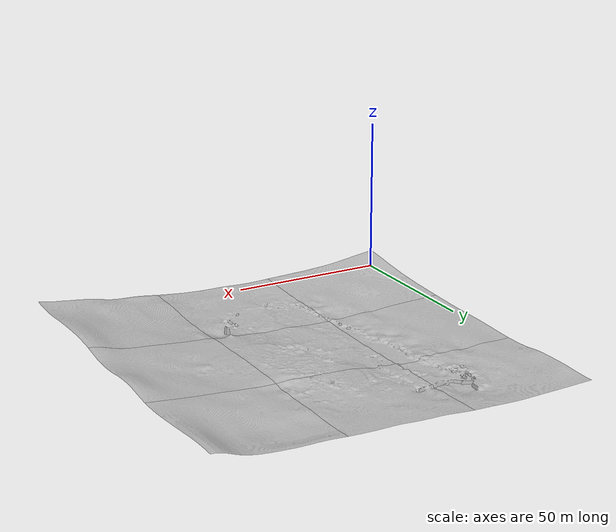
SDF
<?xml version="1.0" ?>
<sdf version="1.4">
    <model name="terrain">
        <static>true</static>
        <link name="terrain1">
            <pose>0 0 0 0 0 0</pose>
            <collision name="terrain1_collision">
                <geometry>
                    <mesh>
                        <uri>model://terrain/meshes/terrain1.dae</uri>
                    </mesh>
                </geometry>
            </collision>
            <visual name="terrain1_visual">
                <geometry>
                    <mesh>
                        <uri>model://terrain/meshes/terrain1.dae</uri>
                    </mesh>
                </geometry>
                <material>
                    <script>
                        <uri>model://terrain/materials/scripts</uri>
                        <uri>model://terrain/materials/textures</uri>
                        <name>terrain/terrain1</name>
                    </script>
                </material>
            </visual>
        </link>
        <link name="terrain2">
            <pose>0 39.9871 0 0 0 0</pose>
            <collision name="terrain2_collision">
                <geometry>
                    <mesh>
                        <uri>model://terrain/meshes/terrain2.dae</uri>
                    </mesh>
                </geometry>
            </collision>
            <visual name="terrain2_visual">
                <geometry>
                    <mesh>
                        <uri>model://terrain/meshes/terrain2.dae</uri>
                    </mesh>
                </geometry>
                <material>
                    <script>
                        <uri>model://terrain/materials/scripts</uri>
                        <uri>model://terrain/materials/textures</uri>
                        <name>terrain/terrain2</name>
                    </script>
                </material>
            </visual>
        </link>
        <link name="terrain3">
            <pose>0 79.9742 0 0 0 0</pose>
            <collision name="terrain3_collision">
                <geometry>
                    <mesh>
                        <uri>model://terrain/meshes/terrain3.dae</uri>
                    </mesh>
                </geometry>
            </collision>
            <visual name="terrain3_visual">
                <geometry>
                    <mesh>
                        <uri>model://terrain/meshes/terrain3.dae</uri>
                    </mesh>
                </geometry>
                <material>
                    <script>
                        <uri>model://terrain/materials/scripts</uri>
                        <uri>model://terrain/materials/textures</uri>
                        <name>terrain/terrain3</name>
                    </script>
                </material>
            </visual>
        </link>
        <link name="terrain4">
            <pose>39.9871 0 0 0 0 0</pose>
            <collision name="terrain4_collision">
                <geometry>
                    <mesh>
                        <uri>model://terrain/meshes/terrain4.dae</uri>
                    </mesh>
                </geometry>
            </collision>
            <visual name="terrain4_visual">
                <geometry>
                    <mesh>
                        <uri>model://terrain/meshes/terrain4.dae</uri>
                    </mesh>
                </geometry>
                <material>
                    <script>
                        <uri>model://terrain/materials/scripts</uri>
                        <uri>model://terrain/materials/textures</uri>
                        <name>terrain/terrain4</name>
                    </script>
                </material>
            </visual>
        </link>
        <link name="terrain5">
            <pose>39.9871 39.9871 0 0 0 0</pose>
            <collision name="terrain5_collision">
                <geometry>
                    <mesh>
                        <uri>model://terrain/meshes/terrain5.dae</uri>
                    </mesh>
                </geometry>
            </collision>
            <visual name="terrain5_visual">
                <geometry>
                    <mesh>
                        <uri>model://terrain/meshes/terrain5.dae</uri>
                    </mesh>
                </geometry>
                <material>
                    <script>
                        <uri>model://terrain/materials/scripts</uri>
                        <uri>model://terrain/materials/textures</uri>
                        <name>terrain/terrain5</name>
                    </script>
                </material>
            </visual>
        </link>
        <link name="terrain6">
            <pose>39.9871 79.9742 0 0 0 0</pose>
            <collision name="terrain6_collision">
                <geometry>
                    <mesh>
                        <uri>model://terrain/meshes/terrain6.dae</uri>
                    </mesh>
                </geometry>
            </collision>
            <visual name="terrain6_visual">
                <geometry>
                    <mesh>
                        <uri>model://terrain/meshes/terrain6.dae</uri>
                    </mesh>
                </geometry>
                <material>
                    <script>
                        <uri>model://terrain/materials/scripts</uri>
                        <uri>model://terrain/materials/textures</uri>
                        <name>terrain/terrain6</name>
                    </script>
                </material>
            </visual>
        </link>
        <link name="terrain7">
            <pose>79.9742 0 0 0 0 0</pose>
            <collision name="terrain7_collision">
                <geometry>
                    <mesh>
                        <uri>model://terrain/meshes/terrain7.dae</uri>
                    </mesh>
                </geometry>
            </collision>
            <visual name="terrain7_visual">
                <geometry>
                    <mesh>
                        <uri>model://terrain/meshes/terrain7.dae</uri>
                    </mesh>
                </geometry>
                <material>
                    <script>
                        <uri>model://terrain/materials/scripts</uri>
                        <uri>model://terrain/materials/textures</uri>
                        <name>terrain/terrain7</name>
                    </script>
                </material>
            </visual>
        </link>
        <link name="terrain8">
            <pose>79.9742 39.9871 0 0 0 0</pose>
            <collision name="terrain8_collision">
                <geometry>
                    <mesh>
                        <uri>model://terrain/meshes/terrain8.dae</uri>
                    </mesh>
                </geometry>
            </collision>
            <visual name="terrain8_visual">
                <geometry>
                    <mesh>
                        <uri>model://terrain/meshes/terrain8.dae</uri>
                    </mesh>
                </geometry>
                <material>
                    <script>
                        <uri>model://terrain/materials/scripts</uri>
                        <uri>model://terrain/materials/textures</uri>
                        <name>terrain/terrain8</name>
                    </script>
                </material>
            </visual>
        </link>
        <link name="terrain9">
            <pose>79.9742 79.9742 0 0 0 0</pose>
            <collision name="terrain9_collision">
                <geometry>
                    <mesh>
                        <uri>model://terrain/meshes/terrain9.dae</uri>
                    </mesh>
                </geometry>
            </collision>
            <visual name="terrain9_visual">
                <geometry>
                    <mesh>
                        <uri>model://terrain/meshes/terrain9.dae</uri>
                    </mesh>
                </geometry>
                <material>
                    <script>
                        <uri>model://terrain/materials/scripts</uri>
                        <uri>model://terrain/materials/textures</uri>
                        <name>terrain/terrain9</name>
                    </script>
                </material>
            </visual>
        </link>
    </model>
</sdf>
